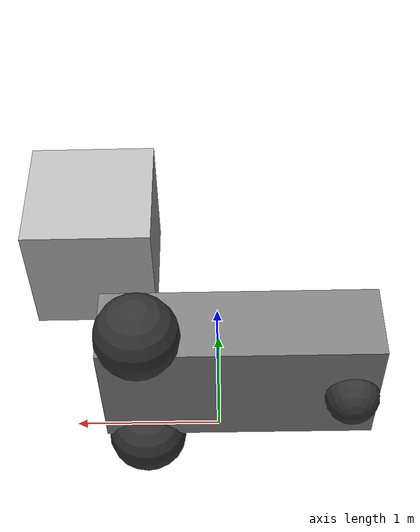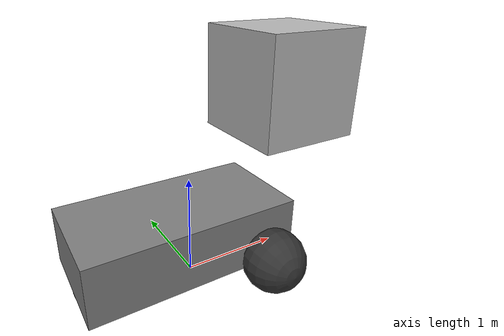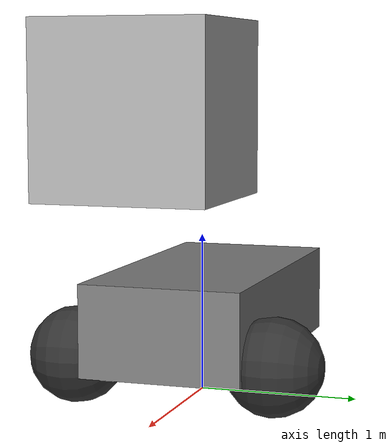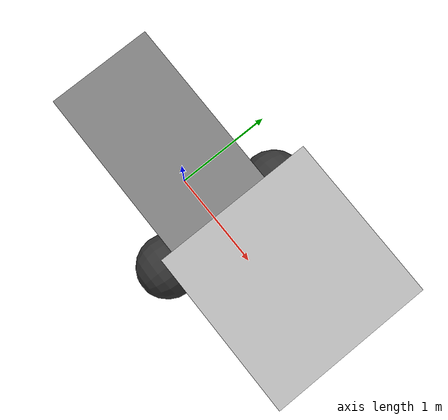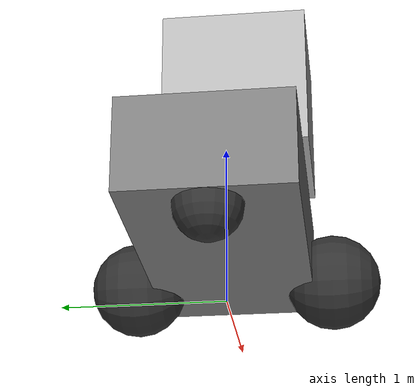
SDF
<?xml version="1.0"?>
<sdf version="1.7">
    <model name="moma">
        <pose>0 0 0.325 0 -0 0</pose>

        <link name='chassis'>
            <pose>-0.151427 -0 0.175 0 -0 0</pose>
            <inertial>
                <mass>1.14395</mass>
                <inertia>
                    <ixx>0.126164</ixx>
                    <ixy>0</ixy>
                    <ixz>0</ixz>
                    <iyy>0.416519</iyy>
                    <iyz>0</iyz>
                    <izz>0.481014</izz>
                </inertia>
            </inertial>
            <visual name='visual'>
                <geometry>
                    <box>
                        <size>2.01142 1 0.568726</size>
                    </box>
                </geometry>
                <material>
                    <ambient>0.5 0.5 0.5 1</ambient>
                    <diffuse>0.5 0.5 0.5 1</diffuse>
                    <specular>0.5 0.5 0.5 1</specular>
                </material>
            </visual>
            <collision name='collision'>
                <geometry>
                    <box>
                        <size>2.01142 1 0.568726</size>
                    </box>
                </geometry>
            </collision>
        </link>

        <link name='left_wheel'>
            <pose>0.554283 0.625029 -0.025 -1.5707 0 0</pose>
            <inertial>
                <mass>2</mass>
                <inertia>
                    <ixx>0.145833</ixx>
                    <ixy>0</ixy>
                    <ixz>0</ixz>
                    <iyy>0.145833</iyy>
                    <iyz>0</iyz>
                    <izz>0.125</izz>
                </inertia>
            </inertial>
            <visual name='visual'>
                <geometry>
                    <sphere>
                        <radius>0.3</radius>
                    </sphere>
                </geometry>
                <material>
                    <ambient>0.2 0.2 0.2 1</ambient>
                    <diffuse>0.2 0.2 0.2 1</diffuse>
                    <specular>0.2 0.2 0.2 1</specular>
                </material>
            </visual>
            <collision name='collision'>
                <geometry>
                    <sphere>
                        <radius>0.3</radius>
                    </sphere>
                </geometry>
            </collision>
        </link>

        <link name='right_wheel'>
            <pose>0.554282 -0.625029 -0.025 -1.5707 0 0</pose>
            <inertial>
                <mass>2</mass>
                <inertia>
                    <ixx>0.145833</ixx>
                    <ixy>0</ixy>
                    <ixz>0</ixz>
                    <iyy>0.145833</iyy>
                    <iyz>0</iyz>
                    <izz>0.125</izz>
                </inertia>
            </inertial>
            <visual name='visual'>
                <geometry>
                    <sphere>
                        <radius>0.3</radius>
                    </sphere>
                </geometry>
                <material>
                    <ambient>0.2 0.2 0.2 1</ambient>
                    <diffuse>0.2 0.2 0.2 1</diffuse>
                    <specular>0.2 0.2 0.2 1</specular>
                </material>
            </visual>
            <collision name='collision'>
                <geometry>
                    <sphere>
                        <radius>0.3</radius>
                    </sphere>
                </geometry>
            </collision>
        </link>

        <link name='caster'>
            <pose>-0.957138 -0 -0.125 0 -0 0</pose>
            <inertial>
                <mass>1</mass>
                <inertia>
                    <ixx>0.1</ixx>
                    <ixy>0</ixy>
                    <ixz>0</ixz>
                    <iyy>0.1</iyy>
                    <iyz>0</iyz>
                    <izz>0.1</izz>
                </inertia>
            </inertial>
            <visual name='visual'>
                <geometry>
                    <sphere>
                        <radius>0.2</radius>
                    </sphere>
                </geometry>
                <material>
                    <ambient>0.2 0.2 0.2 1</ambient>
                    <diffuse>0.2 0.2 0.2 1</diffuse>
                    <specular>0.2 0.2 0.2 1</specular>
                </material>
            </visual>
            <collision name='collision'>
                <geometry>
                    <sphere>
                        <radius>0.2</radius>
                    </sphere>
                </geometry>
            </collision>
        </link>

        <joint name='left_wheel_joint' type='revolute'>
            <parent>chassis</parent>
            <child>left_wheel</child>
            <axis>
                <xyz>0 0 1</xyz>
                <limit>
                    <lower>-1.79769e+308</lower>
                    <upper>1.79769e+308</upper>
                </limit>
            </axis>
        </joint>

        <joint name='right_wheel_joint' type='revolute'>
            <parent>chassis</parent>
            <child>right_wheel</child>
            <axis>
                <xyz>0 0 1</xyz>
                <limit>
                    <lower>-1.79769e+308</lower>
                    <upper>1.79769e+308</upper>
                </limit>
            </axis>
        </joint>

        <joint name='caster_wheel' type='ball'>
            <parent>chassis</parent>
            <child>caster</child>
        </joint>

        <model name="model_01">
        <pose>1.0 0 0.0 0 0 0</pose>
        <link name="link_01">
            <pose>0.0 0 1.5 0 0 0</pose>
            <collision name="collision_01">
            <geometry>
                <box>
                <size>1 1 1</size>
                </box>
            </geometry>
            </collision>
            <visual name="visual_01">
            <geometry>
                <box>
                <size>1 1 1</size>
                </box>
            </geometry>
            </visual>
        </link>
        </model>

        <joint name="joint_00" type="fixed">
            <parent>chassis</parent>
            <child>model_01::link_01</child>
            <pose>0.0 0.0 1.0 0.0 0.0 0.0</pose>
            <axis>
                <xyz>1.0 0.0 0.0</xyz>
            </axis>
        </joint>

    </model>
</sdf>
